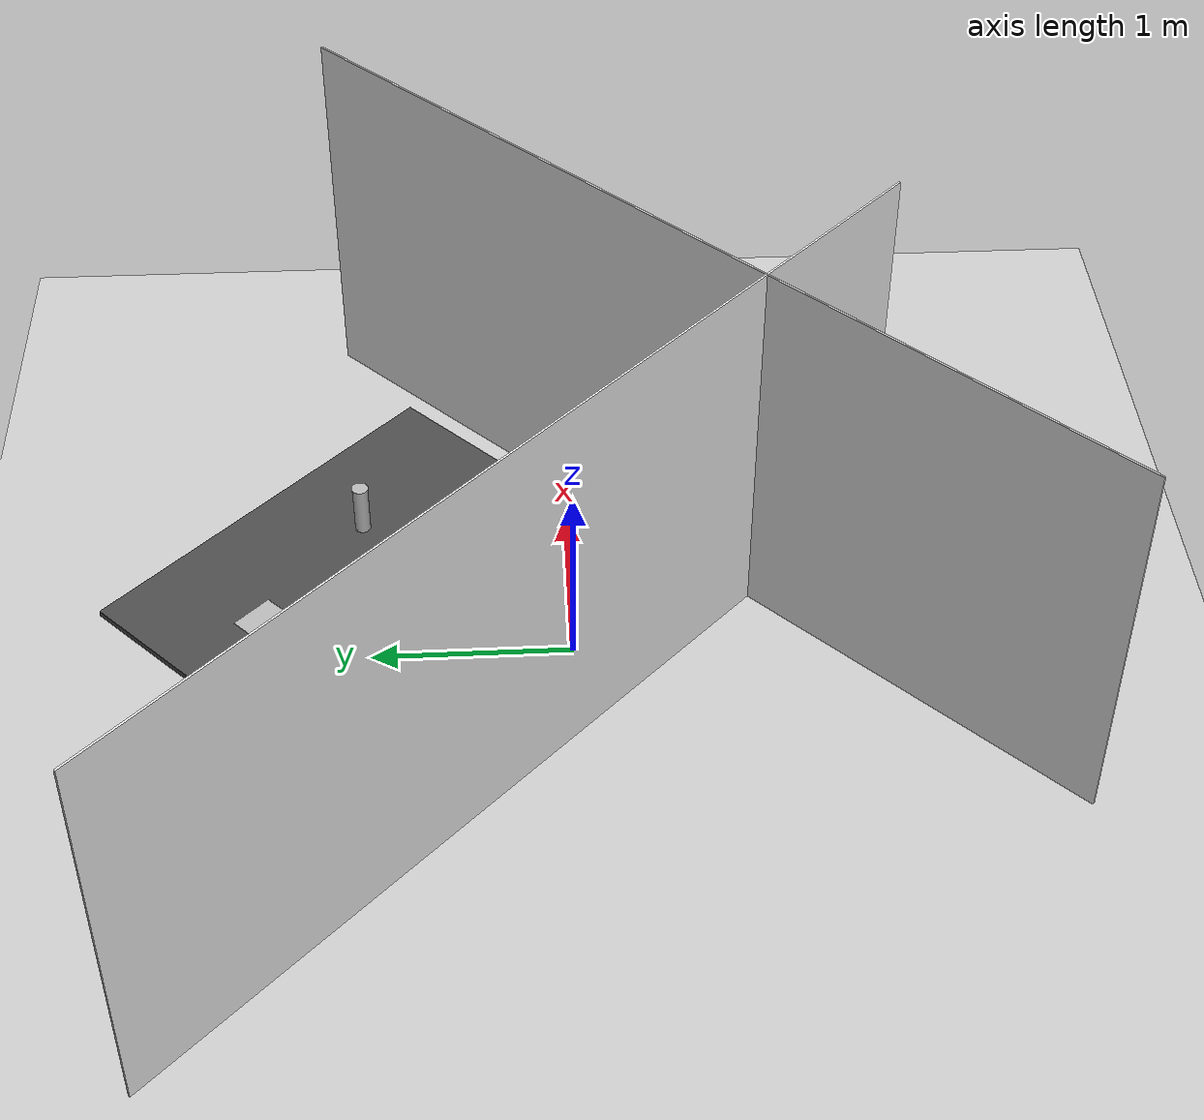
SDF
<sdf version="1.4">
 <world name="default">
  <include><uri>model://ground</uri><pose>-0.20 0.60 0.0 0 0 2.35619</pose></include>
  <include><uri>model://sun</uri></include>
  <include>
   <uri>model://lab_table</uri>
   <static>true</static>
   <name>lab_table</name>
   <pose>-0.14 0.96 0.0 0 0 2.35619</pose>
  </include>
  <include>
   <uri>model://wall</uri>
   <static>true</static>
   <name>wall_1</name>
   <pose>-0.71 0.17 1.0 0 0 2.35619</pose>
  </include>
  <include>
   <uri>model://wall</uri>
   <static>true</static>
   <name>wall_2</name>
   <pose>0.66 -0.585 1.0 0 0 0.785398</pose>
  </include>
  <include>
   <uri>model://ground</uri>
   <static>true</static>
   <name>ground_2</name>
   <pose>-0.2 0.6 2.006 0 0 2.35619</pose>
  </include>
  <include>
   <uri>model://pringles</uri>
   <static>false</static>
   <name>pringles</name>
   <pose>0.2 1.0 0.687 0.0 0.0 0.0</pose>
  </include>
  <include>
   <uri>model://ar_marker_a4</uri>
   <static>true</static>
   <name>ar_marker_a4</name>
   <pose>-0.5 1.5 0.687 0.0 -1.57079632679 2.35619449019</pose>
  </include>
  <physics type="ode">
   <gravity>0.000000 0.000000 -9.810000</gravity>
   <ode>
    <solver><type>quick</type><iters>100</iters><precon_iters>0</precon_iters><sor>1.000000</sor></solver>
    <constraints>
     <cfm>0.000000</cfm>
     <erp>0.200000</erp>
     <contact_max_correcting_vel>0.000000</contact_max_correcting_vel>
     <contact_surface_layer>0.00000</contact_surface_layer>
    </constraints>
   </ode>
   <real_time_update_rate>0.000000</real_time_update_rate>
   <max_step_size>0.001000</max_step_size>
  </physics>
 </world>
</sdf>

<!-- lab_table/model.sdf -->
<sdf version="1.4">
  <model name="lab_table">
    <static>true</static>
    <link name="link">
      <collision name="surface">
        <pose>0 0 0.671 0 0 0</pose>
        <geometry>
          <box>
            <size>2.0 1.5 0.03</size>
          </box>
        </geometry>
        <surface>
          <friction>
            <ode>
              <mu>0.6</mu>
              <mu2>0.6</mu2>
            </ode>
          </friction>
        </surface>
      </collision>
      <visual name="visual1">
        <pose>0 0 0.671 0 0 0</pose>
        <geometry>
          <box>
            <size>2.0 1.5 0.03</size>
          </box>
        </geometry>
        <material>
          <script>
            <uri>file://media/materials/scripts/gazebo.material</uri>
            <name>Gazebo/DarkGrey</name>
          </script>
        </material>
      </visual>
      <collision name="front_left_leg">
        <pose>0.68 0.38 0.3355 0 0 0</pose>
        <geometry>
          <cylinder>
            <radius>0.02</radius>
            <length>0.671</length>
          </cylinder>
        </geometry>
      </collision>
      <visual name="front_left_leg">
        <pose>0.68 0.38 0.3355 0 0 0</pose>
        <geometry>
          <cylinder>
            <radius>0.02</radius>
            <length>0.671</length>
          </cylinder>
        </geometry>
        <material>
          <script>
            <uri>file://media/materials/scripts/gazebo.material</uri>
            <name>Gazebo/Grey</name>
          </script>
        </material>
      </visual>
      <collision name="front_right_leg">
        <pose>0.68 -0.38 0.3355 0 0 0</pose>
        <geometry>
          <cylinder>
            <radius>0.02</radius>
            <length>0.671</length>
          </cylinder>
        </geometry>
      </collision>
      <visual name="front_right_leg">
        <pose>0.68 -0.38 0.3355 0 0 0</pose>
        <geometry>
          <cylinder>
            <radius>0.02</radius>
            <length>0.671</length>
          </cylinder>
        </geometry>
        <material>
          <script>
            <uri>file://media/materials/scripts/gazebo.material</uri>
            <name>Gazebo/Grey</name>
          </script>
        </material>
      </visual>
      <collision name="back_right_leg">
        <pose>-0.68 -0.38 0.3355 0 0 0</pose>
        <geometry>
          <cylinder>
            <radius>0.02</radius>
            <length>0.671</length>
          </cylinder>
        </geometry>
      </collision>
      <visual name="back_right_leg">
        <pose>-0.68 -0.38 0.3355 0 0 0</pose>
        <geometry>
          <cylinder>
            <radius>0.02</radius>
            <length>0.671</length>
          </cylinder>
        </geometry>
        <material>
          <script>
            <uri>file://media/materials/scripts/gazebo.material</uri>
            <name>Gazebo/Grey</name>
          </script>
        </material>
      </visual>
      <collision name="back_left_leg">
        <pose>-0.68 0.38 0.3355 0 0 0</pose>
        <geometry>
          <cylinder>
            <radius>0.02</radius>
            <length>0.671</length>
          </cylinder>
        </geometry>
      </collision>
      <visual name="back_left_leg">
        <pose>-0.68 0.38 0.3355 0 0 0</pose>
        <geometry>
          <cylinder>
            <radius>0.02</radius>
            <length>0.671</length>
          </cylinder>
        </geometry>
        <material>
          <script>
            <uri>file://media/materials/scripts/gazebo.material</uri>
            <name>Gazebo/Grey</name>
          </script>
        </material>
      </visual>
    </link>
  </model>
</sdf>

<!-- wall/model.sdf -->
<sdf version="1.4">
<model name="wall">
    <static>true</static>
    <link name="link">
      <collision name="collision_wall">
        <geometry>
          <box>
            <size>5.0 0.01 2.0</size>
          </box>
        </geometry>
      </collision>
      <visual name="visual_wall">
        <geometry>
          <box>
            <size>5.0 0.01 2.0</size>
          </box>
        </geometry>
        <material>
          <script>
            <uri>file://media/materials/scripts/gazebo.material</uri>
            <name>Gazebo/White</name>
          </script>
        </material>
      </visual>
    </link>
  </model>
</sdf>

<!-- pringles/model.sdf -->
<sdf version="1.4">
  <model name="pringles">
    <link name="link">
      <inertial>
        <mass>0.2</mass>
      </inertial>
      <collision name="collision">
        <pose>0.0 0.0 0.0 0 0.0 0.0</pose>
        <geometry>
          <mesh>
            <uri>model://pringles/meshes/pringles.stl</uri>
          </mesh>
        </geometry>
      </collision>
      <visual name="visual">
        <pose>0.0 0.0 0.0 0 0.0 0.0</pose>
        <geometry>
          <mesh>
            <uri>model://pringles/meshes/pringles.stl</uri>
          </mesh>
        </geometry>
      </visual>
    </link>
  </model>
</sdf>

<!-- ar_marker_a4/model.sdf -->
<sdf version="1.6">
  <model name="ar_marker_a4">
    <static>true</static>
    <link name="link">
      <visual name="visual">
        <geometry>
          <mesh>
            <uri>model://ar_marker_a4/meshes/ar_marker_a4.dae</uri>
          <scale>0.01 0.42 0.42</scale></mesh>
        </geometry>
      </visual>
    </link>
  </model>
</sdf>
